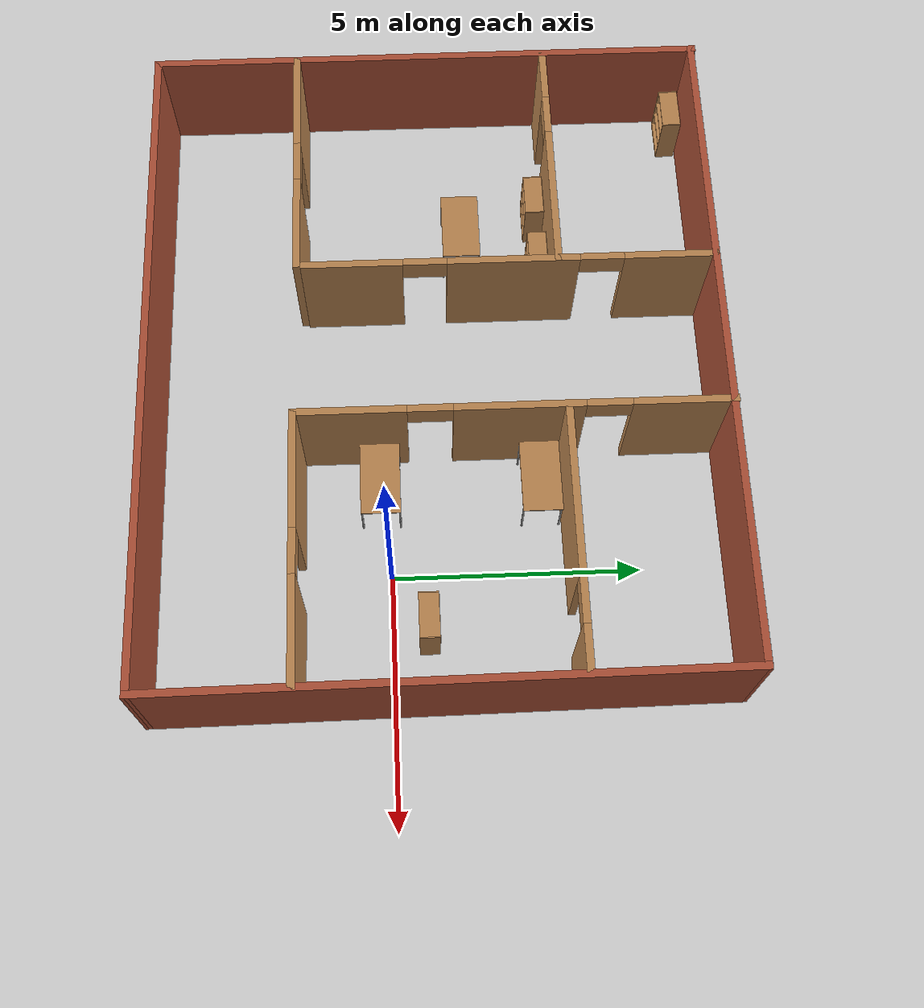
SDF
<sdf version="1.7">
 <world name="default">
  <light name="sun" type="directional">
   <pose>0 0 10 0 -0 0</pose>
   <diffuse>0.8 0.8 0.8 1</diffuse>
   <specular>0.2 0.2 0.2 1</specular>
   <attenuation>
    <range>1000</range>
    <constant>0.9</constant>
    <linear>0.01</linear>
    <quadratic>0.001</quadratic>
   </attenuation>
   <direction>-0.5 0.1 -0.9</direction>
   <spot><inner_angle>0</inner_angle><outer_angle>0</outer_angle><falloff>0</falloff></spot>
  </light>
  <model name="ground_plane">
   <static>1</static>
   <link name="link">
    <collision name="collision">
     <geometry><plane><normal>0 0 1</normal><size>100 100</size></plane></geometry>
     <surface><friction><ode><mu>100</mu><mu2>50</mu2></ode></friction></surface>
    </collision>
    <visual name="visual">
     <cast_shadows>0</cast_shadows>
     <geometry><plane><normal>0 0 1</normal><size>100 100</size></plane></geometry>
     <material>
      <script><uri>file://media/materials/scripts/gazebo.material</uri><name>Gazebo/Grey</name></script>
     </material>
    </visual>
   </link>
  </model>
  <gravity>0 0 -9.8</gravity>
  <magnetic_field>6e-06 2.3e-05 -4.2e-05</magnetic_field>
  <atmosphere type="adiabatic"/>
  <physics type="ode">
   <max_step_size>0.001</max_step_size>
   <real_time_factor>1</real_time_factor>
   <real_time_update_rate>1000</real_time_update_rate>
  </physics>
  <scene><ambient>0.4 0.4 0.4 1</ambient><background>0.7 0.7 0.7 1</background><shadows>1</shadows></scene>
  <audio><device>default</device></audio>
  <spherical_coordinates>
   <surface_model>EARTH_WGS84</surface_model>
   <latitude_deg>0</latitude_deg>
   <longitude_deg>0</longitude_deg>
   <elevation>0</elevation>
   <heading_deg>0</heading_deg>
  </spherical_coordinates>
  <model name="my_floor">
   <pose>-4.13148 1.05676 0 0 -0 0</pose>
   <link name="Wall_0">
    <collision name="Wall_0_Collision">
     <geometry><box><size>11.75 0.15 2.5</size></box></geometry>
     <pose>0 0 1.25 0 -0 0</pose>
    </collision>
    <visual name="Wall_0_Visual">
     <pose>0 0 1.25 0 -0 0</pose>
     <geometry><box><size>11.75 0.15 2.5</size></box></geometry>
     <material>
      <script><uri>file://media/materials/scripts/gazebo.material</uri><name>Gazebo/Bricks</name></script>
      <ambient>1 1 1 1</ambient>
     </material>
     <meta><layer>0</layer></meta>
    </visual>
    <pose>-6.92512 0.000374 0 0 -0 -1.5708</pose>
   </link>
   <link name="Wall_1">
    <collision name="Wall_1_Collision">
     <geometry><box><size>14 0.15 2.5</size></box></geometry>
     <pose>0 0 1.25 0 -0 0</pose>
    </collision>
    <visual name="Wall_1_Visual">
     <pose>0 0 1.25 0 -0 0</pose>
     <geometry><box><size>14 0.15 2.5</size></box></geometry>
     <material>
      <script><uri>file://media/materials/scripts/gazebo.material</uri><name>Gazebo/Bricks</name></script>
      <ambient>1 1 1 1</ambient>
     </material>
     <meta><layer>0</layer></meta>
    </visual>
    <pose>-0.000123 -5.79963 0 0 -0 0</pose>
   </link>
   <link name="Wall_10">
    <pose>-4.31394 2.52722 0 0 -0 0</pose>
    <visual name="Wall_10_Visual_0">
     <pose>-2.03245 0 1.25 0 -0 0</pose>
     <geometry><box><size>1.1851 0.15 2.5</size></box></geometry>
     <material>
      <script><uri>file://media/materials/scripts/gazebo.material</uri><name>Gazebo/Wood</name></script>
      <ambient>1 1 1 1</ambient>
     </material>
     <meta><layer>0</layer></meta>
    </visual>
    <collision name="Wall_10_Collision_0">
     <geometry><box><size>1.1851 0.15 2.5</size></box></geometry>
     <pose>-2.03245 0 1.25 0 -0 0</pose>
    </collision>
    <visual name="Wall_10_Visual_1">
     <pose>1.04255 0 1.25 0 -0 0</pose>
     <geometry><box><size>3.1649 0.15 2.5</size></box></geometry>
     <material>
      <script><uri>file://media/materials/scripts/gazebo.material</uri><name>Gazebo/Wood</name></script>
      <ambient>1 1 1 1</ambient>
     </material>
     <meta><layer>0</layer></meta>
    </visual>
    <collision name="Wall_10_Collision_1">
     <geometry><box><size>3.1649 0.15 2.5</size></box></geometry>
     <pose>1.04255 0 1.25 0 -0 0</pose>
    </collision>
    <visual name="Wall_10_Visual_2">
     <pose>-0.989898 0 2.25 0 -0 0</pose>
     <geometry><box><size>0.9 0.15 0.5</size></box></geometry>
     <material>
      <script><uri>file://media/materials/scripts/gazebo.material</uri><name>Gazebo/Wood</name></script>
      <ambient>1 1 1 1</ambient>
     </material>
     <meta><layer>0</layer></meta>
    </visual>
    <collision name="Wall_10_Collision_2">
     <geometry><box><size>0.9 0.15 0.5</size></box></geometry>
     <pose>-0.989898 0 2.25 0 -0 0</pose>
    </collision>
   </link>
   <link name="Wall_12">
    <pose>1.51778 1.43919 0 0 -0 -1.5708</pose>
    <visual name="Wall_12_Visual_0">
     <pose>-3.33889 0 1.25 0 -0 0</pose>
     <geometry><box><size>2.07222 0.15 2.5</size></box></geometry>
     <material>
      <script><uri>file://media/materials/scripts/gazebo.material</uri><name>Gazebo/Wood</name></script>
      <ambient>1 1 1 1</ambient>
     </material>
     <meta><layer>0</layer></meta>
    </visual>
    <collision name="Wall_12_Collision_0">
     <geometry><box><size>2.07222 0.15 2.5</size></box></geometry>
     <pose>-3.33889 0 1.25 0 -0 0</pose>
    </collision>
    <visual name="Wall_12_Visual_1">
     <pose>-0.109139 0 1.25 0 -0 0</pose>
     <geometry><box><size>2.58729 0.15 2.5</size></box></geometry>
     <material>
      <script><uri>file://media/materials/scripts/gazebo.material</uri><name>Gazebo/Wood</name></script>
      <ambient>1 1 1 1</ambient>
     </material>
     <meta><layer>0</layer></meta>
    </visual>
    <collision name="Wall_12_Collision_1">
     <geometry><box><size>2.58729 0.15 2.5</size></box></geometry>
     <pose>-0.109139 0 1.25 0 -0 0</pose>
    </collision>
    <visual name="Wall_12_Visual_2">
     <pose>3.22975 0 1.25 0 -0 0</pose>
     <geometry><box><size>2.2905 0.15 2.5</size></box></geometry>
     <material>
      <script><uri>file://media/materials/scripts/gazebo.material</uri><name>Gazebo/Wood</name></script>
      <ambient>1 1 1 1</ambient>
     </material>
     <meta><layer>0</layer></meta>
    </visual>
    <collision name="Wall_12_Collision_2">
     <geometry><box><size>2.2905 0.15 2.5</size></box></geometry>
     <pose>3.22975 0 1.25 0 -0 0</pose>
    </collision>
    <visual name="Wall_12_Visual_3">
     <pose>-1.85278 0 2.25 0 -0 0</pose>
     <geometry><box><size>0.9 0.15 0.5</size></box></geometry>
     <material>
      <script><uri>file://media/materials/scripts/gazebo.material</uri><name>Gazebo/Wood</name></script>
      <ambient>1 1 1 1</ambient>
     </material>
     <meta><layer>0</layer></meta>
    </visual>
    <collision name="Wall_12_Collision_3">
     <geometry><box><size>0.9 0.15 0.5</size></box></geometry>
     <pose>-1.85278 0 2.25 0 -0 0</pose>
    </collision>
    <visual name="Wall_12_Visual_4">
     <pose>1.6345 0 2.25 0 -0 0</pose>
     <geometry><box><size>0.9 0.15 0.5</size></box></geometry>
     <material>
      <script><uri>file://media/materials/scripts/gazebo.material</uri><name>Gazebo/Wood</name></script>
      <ambient>1 1 1 1</ambient>
     </material>
     <meta><layer>0</layer></meta>
    </visual>
    <collision name="Wall_12_Collision_4">
     <geometry><box><size>0.9 0.15 0.5</size></box></geometry>
     <pose>1.6345 0 2.25 0 -0 0</pose>
    </collision>
   </link>
   <link name="Wall_13">
    <pose>4.19278 -2.86081 0 0 -0 0</pose>
    <visual name="Wall_13_Visual_0">
     <pose>-1.53035 0 1.25 0 -0 0</pose>
     <geometry><box><size>2.4393 0.15 2.5</size></box></geometry>
     <material>
      <script><uri>file://media/materials/scripts/gazebo.material</uri><name>Gazebo/Wood</name></script>
      <ambient>1 1 1 1</ambient>
     </material>
     <meta><layer>0</layer></meta>
    </visual>
    <collision name="Wall_13_Collision_0">
     <geometry><box><size>2.4393 0.15 2.5</size></box></geometry>
     <pose>-1.53035 0 1.25 0 -0 0</pose>
    </collision>
    <visual name="Wall_13_Visual_1">
     <pose>1.66965 0 1.25 0 -0 0</pose>
     <geometry><box><size>2.1607 0.15 2.5</size></box></geometry>
     <material>
      <script><uri>file://media/materials/scripts/gazebo.material</uri><name>Gazebo/Wood</name></script>
      <ambient>1 1 1 1</ambient>
     </material>
     <meta><layer>0</layer></meta>
    </visual>
    <collision name="Wall_13_Collision_1">
     <geometry><box><size>2.1607 0.15 2.5</size></box></geometry>
     <pose>1.66965 0 1.25 0 -0 0</pose>
    </collision>
    <visual name="Wall_13_Visual_2">
     <pose>0.139301 0 2.25 0 -0 0</pose>
     <geometry><box><size>0.9 0.15 0.5</size></box></geometry>
     <material>
      <script><uri>file://media/materials/scripts/gazebo.material</uri><name>Gazebo/Wood</name></script>
      <ambient>1 1 1 1</ambient>
     </material>
     <meta><layer>0</layer></meta>
    </visual>
    <collision name="Wall_13_Collision_2">
     <geometry><box><size>0.9 0.15 0.5</size></box></geometry>
     <pose>0.139301 0 2.25 0 -0 0</pose>
    </collision>
   </link>
   <link name="Wall_15">
    <pose>4.19014 2.49663 0 0 -0 0</pose>
    <visual name="Wall_15_Visual_0">
     <pose>-0.900611 0 1.25 0 -0 0</pose>
     <geometry><box><size>3.44878 0.15 2.5</size></box></geometry>
     <material>
      <script><uri>file://media/materials/scripts/gazebo.material</uri><name>Gazebo/Wood</name></script>
      <ambient>1 1 1 1</ambient>
     </material>
     <meta><layer>0</layer></meta>
    </visual>
    <collision name="Wall_15_Collision_0">
     <geometry><box><size>3.44878 0.15 2.5</size></box></geometry>
     <pose>-0.900611 0 1.25 0 -0 0</pose>
    </collision>
    <visual name="Wall_15_Visual_1">
     <pose>2.17439 0 1.25 0 -0 0</pose>
     <geometry><box><size>0.901222 0.15 2.5</size></box></geometry>
     <material>
      <script><uri>file://media/materials/scripts/gazebo.material</uri><name>Gazebo/Wood</name></script>
      <ambient>1 1 1 1</ambient>
     </material>
     <meta><layer>0</layer></meta>
    </visual>
    <collision name="Wall_15_Collision_1">
     <geometry><box><size>0.901222 0.15 2.5</size></box></geometry>
     <pose>2.17439 0 1.25 0 -0 0</pose>
    </collision>
    <visual name="Wall_15_Visual_2">
     <pose>1.27378 0 2.25 0 -0 0</pose>
     <geometry><box><size>0.9 0.15 0.5</size></box></geometry>
     <material>
      <script><uri>file://media/materials/scripts/gazebo.material</uri><name>Gazebo/Wood</name></script>
      <ambient>1 1 1 1</ambient>
     </material>
     <meta><layer>0</layer></meta>
    </visual>
    <collision name="Wall_15_Collision_2">
     <geometry><box><size>0.9 0.15 0.5</size></box></geometry>
     <pose>1.27378 0 2.25 0 -0 0</pose>
    </collision>
   </link>
   <link name="Wall_2">
    <collision name="Wall_2_Collision">
     <geometry><box><size>11.6282 0.15 2.5</size></box></geometry>
     <pose>0 0 1.25 0 -0 0</pose>
    </collision>
    <visual name="Wall_2_Visual">
     <pose>0 0 1.25 0 -0 0</pose>
     <geometry><box><size>11.6282 0.15 2.5</size></box></geometry>
     <material>
      <script><uri>file://media/materials/scripts/gazebo.material</uri><name>Gazebo/Bricks</name></script>
      <ambient>1 1 1 1</ambient>
     </material>
     <meta><layer>0</layer></meta>
    </visual>
    <pose>6.86738 -0.060807 0 0 -0 1.58081</pose>
   </link>
   <link name="Wall_3">
    <collision name="Wall_3_Collision">
     <geometry><box><size>13.8853 0.15 2.5</size></box></geometry>
     <pose>0 0 1.25 0 -0 0</pose>
    </collision>
    <visual name="Wall_3_Visual">
     <pose>0 0 1.25 0 -0 0</pose>
     <geometry><box><size>13.8853 0.15 2.5</size></box></geometry>
     <material>
      <script><uri>file://media/materials/scripts/gazebo.material</uri><name>Gazebo/Bricks</name></script>
      <ambient>1 1 1 1</ambient>
     </material>
     <meta><layer>0</layer></meta>
    </visual>
    <pose>-0.057617 5.7239 0 0 -0 3.13491</pose>
   </link>
   <link name="Wall_5">
    <pose>-4.34453 -2.79548 0 0 -0 0</pose>
    <visual name="Wall_5_Visual_0">
     <pose>-1.51242 0 1.25 0 -0 0</pose>
     <geometry><box><size>2.22517 0.15 2.5</size></box></geometry>
     <material>
      <script><uri>file://media/materials/scripts/gazebo.material</uri><name>Gazebo/Wood</name></script>
      <ambient>1 1 1 1</ambient>
     </material>
     <meta><layer>0</layer></meta>
    </visual>
    <collision name="Wall_5_Collision_0">
     <geometry><box><size>2.22517 0.15 2.5</size></box></geometry>
     <pose>-1.51242 0 1.25 0 -0 0</pose>
    </collision>
    <visual name="Wall_5_Visual_1">
     <pose>1.56258 0 1.25 0 -0 0</pose>
     <geometry><box><size>2.12483 0.15 2.5</size></box></geometry>
     <material>
      <script><uri>file://media/materials/scripts/gazebo.material</uri><name>Gazebo/Wood</name></script>
      <ambient>1 1 1 1</ambient>
     </material>
     <meta><layer>0</layer></meta>
    </visual>
    <collision name="Wall_5_Collision_1">
     <geometry><box><size>2.12483 0.15 2.5</size></box></geometry>
     <pose>1.56258 0 1.25 0 -0 0</pose>
    </collision>
    <visual name="Wall_5_Visual_2">
     <pose>0.050169 0 2.25 0 -0 0</pose>
     <geometry><box><size>0.9 0.15 0.5</size></box></geometry>
     <material>
      <script><uri>file://media/materials/scripts/gazebo.material</uri><name>Gazebo/Wood</name></script>
      <ambient>1 1 1 1</ambient>
     </material>
     <meta><layer>0</layer></meta>
    </visual>
    <collision name="Wall_5_Collision_2">
     <geometry><box><size>0.9 0.15 0.5</size></box></geometry>
     <pose>0.050169 0 2.25 0 -0 0</pose>
    </collision>
   </link>
   <link name="Wall_8">
    <pose>-1.75537 1.5336 0 0 -0 -1.5708</pose>
    <visual name="Wall_8_Visual_0">
     <pose>-3.29037 0 1.25 0 -0 0</pose>
     <geometry><box><size>1.91927 0.15 2.5</size></box></geometry>
     <material>
      <script><uri>file://media/materials/scripts/gazebo.material</uri><name>Gazebo/Wood</name></script>
      <ambient>1 1 1 1</ambient>
     </material>
     <meta><layer>0</layer></meta>
    </visual>
    <collision name="Wall_8_Collision_0">
     <geometry><box><size>1.91927 0.15 2.5</size></box></geometry>
     <pose>-3.29037 0 1.25 0 -0 0</pose>
    </collision>
    <visual name="Wall_8_Visual_1">
     <pose>-0.075909 0 1.25 0 -0 0</pose>
     <geometry><box><size>2.70965 0.15 2.5</size></box></geometry>
     <material>
      <script><uri>file://media/materials/scripts/gazebo.material</uri><name>Gazebo/Wood</name></script>
      <ambient>1 1 1 1</ambient>
     </material>
     <meta><layer>0</layer></meta>
    </visual>
    <collision name="Wall_8_Collision_1">
     <geometry><box><size>2.70965 0.15 2.5</size></box></geometry>
     <pose>-0.075909 0 1.25 0 -0 0</pose>
    </collision>
    <visual name="Wall_8_Visual_2">
     <pose>3.21446 0 1.25 0 -0 0</pose>
     <geometry><box><size>2.07109 0.15 2.5</size></box></geometry>
     <material>
      <script><uri>file://media/materials/scripts/gazebo.material</uri><name>Gazebo/Wood</name></script>
      <ambient>1 1 1 1</ambient>
     </material>
     <meta><layer>0</layer></meta>
    </visual>
    <collision name="Wall_8_Collision_2">
     <geometry><box><size>2.07109 0.15 2.5</size></box></geometry>
     <pose>3.21446 0 1.25 0 -0 0</pose>
    </collision>
    <visual name="Wall_8_Visual_3">
     <pose>-1.88073 0 2.25 0 -0 0</pose>
     <geometry><box><size>0.9 0.15 0.5</size></box></geometry>
     <material>
      <script><uri>file://media/materials/scripts/gazebo.material</uri><name>Gazebo/Wood</name></script>
      <ambient>1 1 1 1</ambient>
     </material>
     <meta><layer>0</layer></meta>
    </visual>
    <collision name="Wall_8_Collision_3">
     <geometry><box><size>0.9 0.15 0.5</size></box></geometry>
     <pose>-1.88073 0 2.25 0 -0 0</pose>
    </collision>
    <visual name="Wall_8_Visual_4">
     <pose>1.72891 0 2.25 0 -0 0</pose>
     <geometry><box><size>0.9 0.15 0.5</size></box></geometry>
     <material>
      <script><uri>file://media/materials/scripts/gazebo.material</uri><name>Gazebo/Wood</name></script>
      <ambient>1 1 1 1</ambient>
     </material>
     <meta><layer>0</layer></meta>
    </visual>
    <collision name="Wall_8_Collision_4">
     <geometry><box><size>0.9 0.15 0.5</size></box></geometry>
     <pose>1.72891 0 2.25 0 -0 0</pose>
    </collision>
   </link>
   <static>1</static>
  </model>
  <model name="bookshelf">
   <static>1</static>
   <link name="link">
    <inertial><mass>1</mass></inertial>
    <collision name="back">
     <pose>0 0.005 0.6 0 -0 0</pose>
     <geometry><box><size>0.9 0.01 1.2</size></box></geometry>
    </collision>
    <visual name="visual1">
     <pose>0 0.005 0.6 0 -0 0</pose>
     <geometry><box><size>0.9 0.01 1.2</size></box></geometry>
     <material>
      <script><uri>file://media/materials/scripts/gazebo.material</uri><name>Gazebo/Wood</name></script>
     </material>
    </visual>
    <collision name="left_side">
     <pose>0.45 -0.195 0.6 0 -0 0</pose>
     <geometry><box><size>0.02 0.4 1.2</size></box></geometry>
    </collision>
    <visual name="visual2">
     <pose>0.45 -0.195 0.6 0 -0 0</pose>
     <geometry><box><size>0.02 0.4 1.2</size></box></geometry>
     <material>
      <script><uri>file://media/materials/scripts/gazebo.material</uri><name>Gazebo/Wood</name></script>
     </material>
    </visual>
    <collision name="right_side">
     <pose>-0.45 -0.195 0.6 0 -0 0</pose>
     <geometry><box><size>0.02 0.4 1.2</size></box></geometry>
    </collision>
    <visual name="visual3">
     <pose>-0.45 -0.195 0.6 0 -0 0</pose>
     <geometry><box><size>0.02 0.4 1.2</size></box></geometry>
     <material>
      <script><uri>file://media/materials/scripts/gazebo.material</uri><name>Gazebo/Wood</name></script>
     </material>
    </visual>
    <collision name="bottom">
     <pose>0 -0.195 0.03 0 -0 0</pose>
     <geometry><box><size>0.88 0.4 0.06</size></box></geometry>
    </collision>
    <visual name="visual4">
     <pose>0 -0.195 0.03 0 -0 0</pose>
     <geometry><box><size>0.88 0.4 0.06</size></box></geometry>
     <material>
      <script><uri>file://media/materials/scripts/gazebo.material</uri><name>Gazebo/Wood</name></script>
     </material>
    </visual>
    <collision name="top">
     <pose>0 -0.195 1.19 0 -0 0</pose>
     <geometry><box><size>0.88 0.4 0.02</size></box></geometry>
    </collision>
    <visual name="visual5">
     <pose>0 -0.195 1.19 0 -0 0</pose>
     <geometry><box><size>0.88 0.4 0.02</size></box></geometry>
     <material>
      <script><uri>file://media/materials/scripts/gazebo.material</uri><name>Gazebo/Wood</name></script>
     </material>
    </visual>
    <collision name="low_shelf">
     <pose>0 -0.195 0.43 0 -0 0</pose>
     <geometry><box><size>0.88 0.4 0.02</size></box></geometry>
    </collision>
    <visual name="visual6">
     <pose>0 -0.195 0.43 0 -0 0</pose>
     <geometry><box><size>0.88 0.4 0.02</size></box></geometry>
     <material>
      <script><uri>file://media/materials/scripts/gazebo.material</uri><name>Gazebo/Wood</name></script>
     </material>
    </visual>
    <collision name="high_shelf">
     <pose>0 -0.195 0.8 0 -0 0</pose>
     <geometry><box><size>0.88 0.4 0.02</size></box></geometry>
    </collision>
    <visual name="visual7">
     <pose>0 -0.195 0.8 0 -0 0</pose>
     <geometry><box><size>0.88 0.4 0.02</size></box></geometry>
     <material>
      <script><uri>file://media/materials/scripts/gazebo.material</uri><name>Gazebo/Wood</name></script>
     </material>
    </visual>
   </link>
   <pose>-8.27306 3.49526 0 0 -0 0</pose>
  </model>
  <model name="bookshelf_0">
   <static>1</static>
   <link name="link">
    <inertial><mass>1</mass></inertial>
    <collision name="back">
     <pose>0 0.005 0.6 0 -0 0</pose>
     <geometry><box><size>0.9 0.01 1.2</size></box></geometry>
    </collision>
    <visual name="visual1">
     <pose>0 0.005 0.6 0 -0 0</pose>
     <geometry><box><size>0.9 0.01 1.2</size></box></geometry>
     <material>
      <script><uri>file://media/materials/scripts/gazebo.material</uri><name>Gazebo/Wood</name></script>
     </material>
    </visual>
    <collision name="left_side">
     <pose>0.45 -0.195 0.6 0 -0 0</pose>
     <geometry><box><size>0.02 0.4 1.2</size></box></geometry>
    </collision>
    <visual name="visual2">
     <pose>0.45 -0.195 0.6 0 -0 0</pose>
     <geometry><box><size>0.02 0.4 1.2</size></box></geometry>
     <material>
      <script><uri>file://media/materials/scripts/gazebo.material</uri><name>Gazebo/Wood</name></script>
     </material>
    </visual>
    <collision name="right_side">
     <pose>-0.45 -0.195 0.6 0 -0 0</pose>
     <geometry><box><size>0.02 0.4 1.2</size></box></geometry>
    </collision>
    <visual name="visual3">
     <pose>-0.45 -0.195 0.6 0 -0 0</pose>
     <geometry><box><size>0.02 0.4 1.2</size></box></geometry>
     <material>
      <script><uri>file://media/materials/scripts/gazebo.material</uri><name>Gazebo/Wood</name></script>
     </material>
    </visual>
    <collision name="bottom">
     <pose>0 -0.195 0.03 0 -0 0</pose>
     <geometry><box><size>0.88 0.4 0.06</size></box></geometry>
    </collision>
    <visual name="visual4">
     <pose>0 -0.195 0.03 0 -0 0</pose>
     <geometry><box><size>0.88 0.4 0.06</size></box></geometry>
     <material>
      <script><uri>file://media/materials/scripts/gazebo.material</uri><name>Gazebo/Wood</name></script>
     </material>
    </visual>
    <collision name="top">
     <pose>0 -0.195 1.19 0 -0 0</pose>
     <geometry><box><size>0.88 0.4 0.02</size></box></geometry>
    </collision>
    <visual name="visual5">
     <pose>0 -0.195 1.19 0 -0 0</pose>
     <geometry><box><size>0.88 0.4 0.02</size></box></geometry>
     <material>
      <script><uri>file://media/materials/scripts/gazebo.material</uri><name>Gazebo/Wood</name></script>
     </material>
    </visual>
    <collision name="low_shelf">
     <pose>0 -0.195 0.43 0 -0 0</pose>
     <geometry><box><size>0.88 0.4 0.02</size></box></geometry>
    </collision>
    <visual name="visual6">
     <pose>0 -0.195 0.43 0 -0 0</pose>
     <geometry><box><size>0.88 0.4 0.02</size></box></geometry>
     <material>
      <script><uri>file://media/materials/scripts/gazebo.material</uri><name>Gazebo/Wood</name></script>
     </material>
    </visual>
    <collision name="high_shelf">
     <pose>0 -0.195 0.8 0 -0 0</pose>
     <geometry><box><size>0.88 0.4 0.02</size></box></geometry>
    </collision>
    <visual name="visual7">
     <pose>0 -0.195 0.8 0 -0 0</pose>
     <geometry><box><size>0.88 0.4 0.02</size></box></geometry>
     <material>
      <script><uri>file://media/materials/scripts/gazebo.material</uri><name>Gazebo/Wood</name></script>
     </material>
    </visual>
   </link>
   <pose>-6.87144 3.50156 0 0 -0 0</pose>
  </model>
  <model name="table">
   <static>1</static>
   <link name="link">
    <collision name="surface">
     <pose>0 0 1 0 -0 0</pose>
     <geometry><box><size>1.5 0.8 0.03</size></box></geometry>
     <surface><friction><ode><mu>0.6</mu><mu2>0.6</mu2></ode></friction></surface>
    </collision>
    <visual name="visual1">
     <pose>0 0 1 0 -0 0</pose>
     <geometry><box><size>1.5 0.8 0.03</size></box></geometry>
     <material>
      <script><uri>file://media/materials/scripts/gazebo.material</uri><name>Gazebo/Wood</name></script>
     </material>
    </visual>
    <collision name="front_left_leg">
     <pose>0.68 0.38 0.5 0 -0 0</pose>
     <geometry><cylinder><radius>0.02</radius><length>1</length></cylinder></geometry>
    </collision>
    <visual name="front_left_leg">
     <pose>0.68 0.38 0.5 0 -0 0</pose>
     <geometry><cylinder><radius>0.02</radius><length>1</length></cylinder></geometry>
     <material>
      <script><uri>file://media/materials/scripts/gazebo.material</uri><name>Gazebo/Grey</name></script>
     </material>
    </visual>
    <collision name="front_right_leg">
     <pose>0.68 -0.38 0.5 0 -0 0</pose>
     <geometry><cylinder><radius>0.02</radius><length>1</length></cylinder></geometry>
    </collision>
    <visual name="front_right_leg">
     <pose>0.68 -0.38 0.5 0 -0 0</pose>
     <geometry><cylinder><radius>0.02</radius><length>1</length></cylinder></geometry>
     <material>
      <script><uri>file://media/materials/scripts/gazebo.material</uri><name>Gazebo/Grey</name></script>
     </material>
    </visual>
    <collision name="back_right_leg">
     <pose>-0.68 -0.38 0.5 0 -0 0</pose>
     <geometry><cylinder><radius>0.02</radius><length>1</length></cylinder></geometry>
    </collision>
    <visual name="back_right_leg">
     <pose>-0.68 -0.38 0.5 0 -0 0</pose>
     <geometry><cylinder><radius>0.02</radius><length>1</length></cylinder></geometry>
     <material>
      <script><uri>file://media/materials/scripts/gazebo.material</uri><name>Gazebo/Grey</name></script>
     </material>
    </visual>
    <collision name="back_left_leg">
     <pose>-0.68 0.38 0.5 0 -0 0</pose>
     <geometry><cylinder><radius>0.02</radius><length>1</length></cylinder></geometry>
    </collision>
    <visual name="back_left_leg">
     <pose>-0.68 0.38 0.5 0 -0 0</pose>
     <geometry><cylinder><radius>0.02</radius><length>1</length></cylinder></geometry>
     <material>
      <script><uri>file://media/materials/scripts/gazebo.material</uri><name>Gazebo/Grey</name></script>
     </material>
    </visual>
   </link>
   <pose>-1.73394 3.04795 0 0 -0 0</pose>
  </model>
  <model name="table_0">
   <static>1</static>
   <link name="link">
    <collision name="surface">
     <pose>0 0 1 0 -0 0</pose>
     <geometry><box><size>1.5 0.8 0.03</size></box></geometry>
     <surface><friction><ode><mu>0.6</mu><mu2>0.6</mu2></ode></friction></surface>
    </collision>
    <visual name="visual1">
     <pose>0 0 1 0 -0 0</pose>
     <geometry><box><size>1.5 0.8 0.03</size></box></geometry>
     <material>
      <script><uri>file://media/materials/scripts/gazebo.material</uri><name>Gazebo/Wood</name></script>
     </material>
    </visual>
    <collision name="front_left_leg">
     <pose>0.68 0.38 0.5 0 -0 0</pose>
     <geometry><cylinder><radius>0.02</radius><length>1</length></cylinder></geometry>
    </collision>
    <visual name="front_left_leg">
     <pose>0.68 0.38 0.5 0 -0 0</pose>
     <geometry><cylinder><radius>0.02</radius><length>1</length></cylinder></geometry>
     <material>
      <script><uri>file://media/materials/scripts/gazebo.material</uri><name>Gazebo/Grey</name></script>
     </material>
    </visual>
    <collision name="front_right_leg">
     <pose>0.68 -0.38 0.5 0 -0 0</pose>
     <geometry><cylinder><radius>0.02</radius><length>1</length></cylinder></geometry>
    </collision>
    <visual name="front_right_leg">
     <pose>0.68 -0.38 0.5 0 -0 0</pose>
     <geometry><cylinder><radius>0.02</radius><length>1</length></cylinder></geometry>
     <material>
      <script><uri>file://media/materials/scripts/gazebo.material</uri><name>Gazebo/Grey</name></script>
     </material>
    </visual>
    <collision name="back_right_leg">
     <pose>-0.68 -0.38 0.5 0 -0 0</pose>
     <geometry><cylinder><radius>0.02</radius><length>1</length></cylinder></geometry>
    </collision>
    <visual name="back_right_leg">
     <pose>-0.68 -0.38 0.5 0 -0 0</pose>
     <geometry><cylinder><radius>0.02</radius><length>1</length></cylinder></geometry>
     <material>
      <script><uri>file://media/materials/scripts/gazebo.material</uri><name>Gazebo/Grey</name></script>
     </material>
    </visual>
    <collision name="back_left_leg">
     <pose>-0.68 0.38 0.5 0 -0 0</pose>
     <geometry><cylinder><radius>0.02</radius><length>1</length></cylinder></geometry>
    </collision>
    <visual name="back_left_leg">
     <pose>-0.68 0.38 0.5 0 -0 0</pose>
     <geometry><cylinder><radius>0.02</radius><length>1</length></cylinder></geometry>
     <material>
      <script><uri>file://media/materials/scripts/gazebo.material</uri><name>Gazebo/Grey</name></script>
     </material>
    </visual>
   </link>
   <pose>-1.7898 -0.176343 0 0 -0 0</pose>
  </model>
  <model name="bookshelf_1">
   <static>1</static>
   <link name="link">
    <inertial><mass>1</mass></inertial>
    <collision name="back">
     <pose>0 0.005 0.6 0 -0 0</pose>
     <geometry><box><size>0.9 0.01 1.2</size></box></geometry>
    </collision>
    <visual name="visual1">
     <pose>0 0.005 0.6 0 -0 0</pose>
     <geometry><box><size>0.9 0.01 1.2</size></box></geometry>
     <material>
      <script><uri>file://media/materials/scripts/gazebo.material</uri><name>Gazebo/Wood</name></script>
     </material>
    </visual>
    <collision name="left_side">
     <pose>0.45 -0.195 0.6 0 -0 0</pose>
     <geometry><box><size>0.02 0.4 1.2</size></box></geometry>
    </collision>
    <visual name="visual2">
     <pose>0.45 -0.195 0.6 0 -0 0</pose>
     <geometry><box><size>0.02 0.4 1.2</size></box></geometry>
     <material>
      <script><uri>file://media/materials/scripts/gazebo.material</uri><name>Gazebo/Wood</name></script>
     </material>
    </visual>
    <collision name="right_side">
     <pose>-0.45 -0.195 0.6 0 -0 0</pose>
     <geometry><box><size>0.02 0.4 1.2</size></box></geometry>
    </collision>
    <visual name="visual3">
     <pose>-0.45 -0.195 0.6 0 -0 0</pose>
     <geometry><box><size>0.02 0.4 1.2</size></box></geometry>
     <material>
      <script><uri>file://media/materials/scripts/gazebo.material</uri><name>Gazebo/Wood</name></script>
     </material>
    </visual>
    <collision name="bottom">
     <pose>0 -0.195 0.03 0 -0 0</pose>
     <geometry><box><size>0.88 0.4 0.06</size></box></geometry>
    </collision>
    <visual name="visual4">
     <pose>0 -0.195 0.03 0 -0 0</pose>
     <geometry><box><size>0.88 0.4 0.06</size></box></geometry>
     <material>
      <script><uri>file://media/materials/scripts/gazebo.material</uri><name>Gazebo/Wood</name></script>
     </material>
    </visual>
    <collision name="top">
     <pose>0 -0.195 1.19 0 -0 0</pose>
     <geometry><box><size>0.88 0.4 0.02</size></box></geometry>
    </collision>
    <visual name="visual5">
     <pose>0 -0.195 1.19 0 -0 0</pose>
     <geometry><box><size>0.88 0.4 0.02</size></box></geometry>
     <material>
      <script><uri>file://media/materials/scripts/gazebo.material</uri><name>Gazebo/Wood</name></script>
     </material>
    </visual>
    <collision name="low_shelf">
     <pose>0 -0.195 0.43 0 -0 0</pose>
     <geometry><box><size>0.88 0.4 0.02</size></box></geometry>
    </collision>
    <visual name="visual6">
     <pose>0 -0.195 0.43 0 -0 0</pose>
     <geometry><box><size>0.88 0.4 0.02</size></box></geometry>
     <material>
      <script><uri>file://media/materials/scripts/gazebo.material</uri><name>Gazebo/Wood</name></script>
     </material>
    </visual>
    <collision name="high_shelf">
     <pose>0 -0.195 0.8 0 -0 0</pose>
     <geometry><box><size>0.88 0.4 0.02</size></box></geometry>
    </collision>
    <visual name="visual7">
     <pose>0 -0.195 0.8 0 -0 0</pose>
     <geometry><box><size>0.88 0.4 0.02</size></box></geometry>
     <material>
      <script><uri>file://media/materials/scripts/gazebo.material</uri><name>Gazebo/Wood</name></script>
     </material>
    </visual>
   </link>
   <pose>1.13083 0.905803 0 0 -0 0</pose>
  </model>
  <model name="table_1">
   <static>1</static>
   <link name="link">
    <collision name="surface">
     <pose>0 0 1 0 -0 0</pose>
     <geometry><box><size>1.5 0.8 0.03</size></box></geometry>
     <surface><friction><ode><mu>0.6</mu><mu2>0.6</mu2></ode></friction></surface>
    </collision>
    <visual name="visual1">
     <pose>0 0 1 0 -0 0</pose>
     <geometry><box><size>1.5 0.8 0.03</size></box></geometry>
     <material>
      <script><uri>file://media/materials/scripts/gazebo.material</uri><name>Gazebo/Wood</name></script>
     </material>
    </visual>
    <collision name="front_left_leg">
     <pose>0.68 0.38 0.5 0 -0 0</pose>
     <geometry><cylinder><radius>0.02</radius><length>1</length></cylinder></geometry>
    </collision>
    <visual name="front_left_leg">
     <pose>0.68 0.38 0.5 0 -0 0</pose>
     <geometry><cylinder><radius>0.02</radius><length>1</length></cylinder></geometry>
     <material>
      <script><uri>file://media/materials/scripts/gazebo.material</uri><name>Gazebo/Grey</name></script>
     </material>
    </visual>
    <collision name="front_right_leg">
     <pose>0.68 -0.38 0.5 0 -0 0</pose>
     <geometry><cylinder><radius>0.02</radius><length>1</length></cylinder></geometry>
    </collision>
    <visual name="front_right_leg">
     <pose>0.68 -0.38 0.5 0 -0 0</pose>
     <geometry><cylinder><radius>0.02</radius><length>1</length></cylinder></geometry>
     <material>
      <script><uri>file://media/materials/scripts/gazebo.material</uri><name>Gazebo/Grey</name></script>
     </material>
    </visual>
    <collision name="back_right_leg">
     <pose>-0.68 -0.38 0.5 0 -0 0</pose>
     <geometry><cylinder><radius>0.02</radius><length>1</length></cylinder></geometry>
    </collision>
    <visual name="back_right_leg">
     <pose>-0.68 -0.38 0.5 0 -0 0</pose>
     <geometry><cylinder><radius>0.02</radius><length>1</length></cylinder></geometry>
     <material>
      <script><uri>file://media/materials/scripts/gazebo.material</uri><name>Gazebo/Grey</name></script>
     </material>
    </visual>
    <collision name="back_left_leg">
     <pose>-0.68 0.38 0.5 0 -0 0</pose>
     <geometry><cylinder><radius>0.02</radius><length>1</length></cylinder></geometry>
    </collision>
    <visual name="back_left_leg">
     <pose>-0.68 0.38 0.5 0 -0 0</pose>
     <geometry><cylinder><radius>0.02</radius><length>1</length></cylinder></geometry>
     <material>
      <script><uri>file://media/materials/scripts/gazebo.material</uri><name>Gazebo/Grey</name></script>
     </material>
    </visual>
   </link>
   <pose>-7.64392 1.67994 0 0 -0 0</pose>
  </model>
  <model name="bookshelf_2">
   <static>1</static>
   <link name="link">
    <inertial><mass>1</mass></inertial>
    <collision name="back">
     <pose>0 0.005 0.6 0 -0 0</pose>
     <geometry><box><size>0.9 0.01 1.2</size></box></geometry>
    </collision>
    <visual name="visual1">
     <pose>0 0.005 0.6 0 -0 0</pose>
     <geometry><box><size>0.9 0.01 1.2</size></box></geometry>
     <material>
      <script><uri>file://media/materials/scripts/gazebo.material</uri><name>Gazebo/Wood</name></script>
     </material>
    </visual>
    <collision name="left_side">
     <pose>0.45 -0.195 0.6 0 -0 0</pose>
     <geometry><box><size>0.02 0.4 1.2</size></box></geometry>
    </collision>
    <visual name="visual2">
     <pose>0.45 -0.195 0.6 0 -0 0</pose>
     <geometry><box><size>0.02 0.4 1.2</size></box></geometry>
     <material>
      <script><uri>file://media/materials/scripts/gazebo.material</uri><name>Gazebo/Wood</name></script>
     </material>
    </visual>
    <collision name="right_side">
     <pose>-0.45 -0.195 0.6 0 -0 0</pose>
     <geometry><box><size>0.02 0.4 1.2</size></box></geometry>
    </collision>
    <visual name="visual3">
     <pose>-0.45 -0.195 0.6 0 -0 0</pose>
     <geometry><box><size>0.02 0.4 1.2</size></box></geometry>
     <material>
      <script><uri>file://media/materials/scripts/gazebo.material</uri><name>Gazebo/Wood</name></script>
     </material>
    </visual>
    <collision name="bottom">
     <pose>0 -0.195 0.03 0 -0 0</pose>
     <geometry><box><size>0.88 0.4 0.06</size></box></geometry>
    </collision>
    <visual name="visual4">
     <pose>0 -0.195 0.03 0 -0 0</pose>
     <geometry><box><size>0.88 0.4 0.06</size></box></geometry>
     <material>
      <script><uri>file://media/materials/scripts/gazebo.material</uri><name>Gazebo/Wood</name></script>
     </material>
    </visual>
    <collision name="top">
     <pose>0 -0.195 1.19 0 -0 0</pose>
     <geometry><box><size>0.88 0.4 0.02</size></box></geometry>
    </collision>
    <visual name="visual5">
     <pose>0 -0.195 1.19 0 -0 0</pose>
     <geometry><box><size>0.88 0.4 0.02</size></box></geometry>
     <material>
      <script><uri>file://media/materials/scripts/gazebo.material</uri><name>Gazebo/Wood</name></script>
     </material>
    </visual>
    <collision name="low_shelf">
     <pose>0 -0.195 0.43 0 -0 0</pose>
     <geometry><box><size>0.88 0.4 0.02</size></box></geometry>
    </collision>
    <visual name="visual6">
     <pose>0 -0.195 0.43 0 -0 0</pose>
     <geometry><box><size>0.88 0.4 0.02</size></box></geometry>
     <material>
      <script><uri>file://media/materials/scripts/gazebo.material</uri><name>Gazebo/Wood</name></script>
     </material>
    </visual>
    <collision name="high_shelf">
     <pose>0 -0.195 0.8 0 -0 0</pose>
     <geometry><box><size>0.88 0.4 0.02</size></box></geometry>
    </collision>
    <visual name="visual7">
     <pose>0 -0.195 0.8 0 -0 0</pose>
     <geometry><box><size>0.88 0.4 0.02</size></box></geometry>
     <material>
      <script><uri>file://media/materials/scripts/gazebo.material</uri><name>Gazebo/Wood</name></script>
     </material>
    </visual>
   </link>
   <pose>-10.4525 6.69886 0 0 -0 0</pose>
  </model>
 </world>
</sdf>
